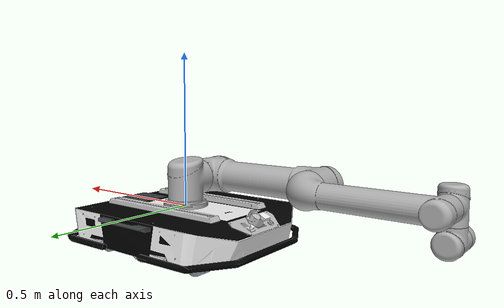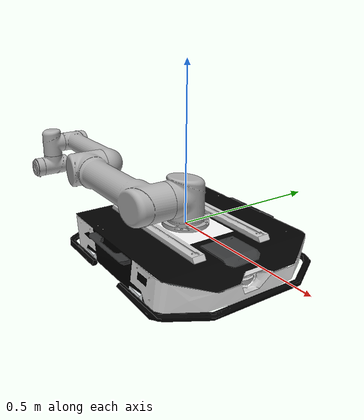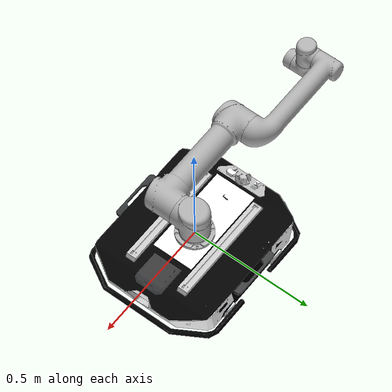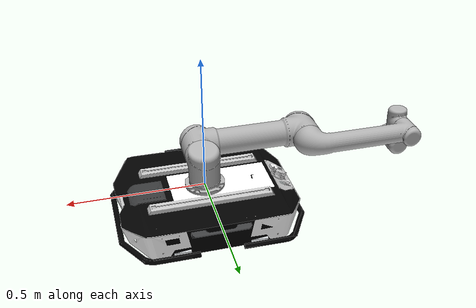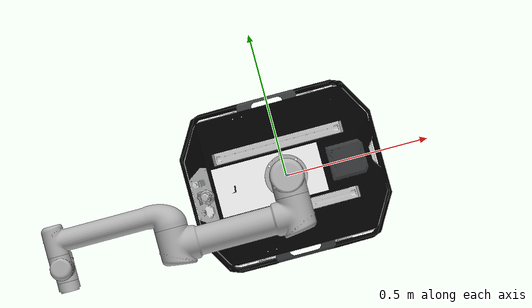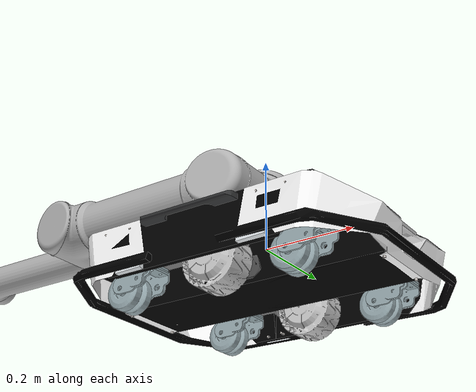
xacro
<?xml version="1.0"?>
<robot name="tracer_ur5_combined">
  <!-- ====================== TRACER URDF CONTENT ====================== -->
  <!-- This content comes directly from your tracer URDF file -->
  <!-- |    This document was autogenerated by xacro from /home/baqer/tracer_ur5_ws/src/tracer_ros/tracer_description/urdf/tracer_v1.xacro | -->
  <!-- |    EDITING THIS FILE BY HAND IS NOT RECOMMENDED                                 | -->
  <link name="base_link">
    <visual>
      <origin rpy="1.57 0 0" xyz="0 0 0" />
      <geometry>
        <mesh filename="package://tracer_description/meshes/tracer_base_link_no_wheel.dae" />
      </geometry>
    </visual>
    <collision>
      <origin rpy="1.57 0 0" xyz="0 0 0" />
      <geometry>
        <mesh filename="package://tracer_description/meshes/tracer_base_link_no_wheel.dae" />
      </geometry>
    </collision>
    <inertial>
      <mass value="0.1" />
      <origin xyz="0 0 0" rpy="0 0 0" />
      <inertia ixx="0.03" iyy="0.03" izz="0.03" ixy="0.0" ixz="0.0" iyz="0.0" />
    </inertial>
  </link>
  <!-- inertial link -->
  <link name="inertial_link">
    <inertial>
      <mass value="132.3898489950015" />
      <origin xyz="0.015 0.0231316650320557 0" />
      <inertia ixx="0.185196122711036" ixy="4.30144213829512E-08" ixz="5.81037523686401E-08" iyy="0.364893736238929" iyz="-0.000386720198091934" izz="0.223868521722778" />
    </inertial>
  </link>
  <joint name="inertial_joint" type="fixed">
    <origin rpy="0 0 0" xyz="0 0 0" />
    <parent link="base_link" />
    <child link="inertial_link" />
  </joint>
  <!-- right wheel -->
  <link name="right_wheel_link">
    <inertial>
      <mass value="6" />
      <origin xyz="0 0 0" rpy="0 0 0" />
      <inertia ixx="0.7171" ixy="0" ixz="0" iyy="0.1361" iyz="0" izz="0.7171" />
    </inertial>
    <visual>
      <origin rpy="0 0 0" xyz="0 0 0" />
      <geometry>
        <mesh filename="package://tracer_description/meshes/tracer_wheel.dae" />
      </geometry>
    </visual>
    <collision>
      <origin rpy="0 0 0" xyz="0 0 0" />
      <geometry>
        <mesh filename="package://tracer_description/meshes/tracer_wheel.dae" />
      </geometry>
    </collision>
  </link>
  <joint name="right_wheel" type="continuous">
    <parent link="base_link" />
    <child link="right_wheel_link" />
    <origin rpy="0 0 0" xyz="0 -0.17 -0.082" />
    <axis rpy="0 0 0" xyz="0 1 0" />
  </joint>
  <!-- left wheel -->
  <link name="left_wheel_link">
    <inertial>
      <mass value="6" />
      <origin xyz="0 0 0" rpy="0 0 0" />
      <inertia ixx="0.7171" ixy="0" ixz="0" iyy="0.1361" iyz="0" izz="0.7171" />
    </inertial>
    <visual>
      <origin rpy="0 0 0" xyz="0 0 0" />
      <geometry>
        <mesh filename="package://tracer_description/meshes/tracer_wheel.dae" />
      </geometry>
    </visual>
    <collision>
      <origin rpy="0 0 0" xyz="0 0 0" />
      <geometry>
        <mesh filename="package://tracer_description/meshes/tracer_wheel.dae" />
      </geometry>
    </collision>
  </link>
  <joint name="left_wheel" type="continuous">
    <parent link="base_link" />
    <child link="left_wheel_link" />
    <origin rpy="3.14 0 0" xyz="0 0.17 -0.082" />
    <axis rpy="0 0 0" xyz="0 1 0" />
  </joint>
  <!-- front left castor -->
  <link name="fl_castor_link">
    <inertial>
      <mass value="1" />
      <origin xyz="0 0 0" />
      <inertia ixx="0.7171" ixy="0" ixz="0" iyy="0.1361" iyz="0" izz="0.7171" />
    </inertial>
    <visual>
      <geometry>
        <mesh filename="package://tracer_description/meshes/castor_joint.dae" />
      </geometry>
    </visual>
  </link>
  <joint name="fl_castor_wheel" type="continuous">
    <origin rpy="-1.57 0 0" xyz="0.18955 0.17 -0.0380886" />
    <parent link="base_link" />
    <child link="fl_castor_link" />
    <axis rpy="0 0 0" xyz="0 1 0" />
  </joint>
  <!-- front right castor -->
  <link name="fr_castor_link">
    <inertial>
      <mass value="1" />
      <origin xyz="0 0 0" />
      <inertia ixx="0.7171" ixy="0" ixz="0" iyy="0.1361" iyz="0" izz="0.7171" />
    </inertial>
    <visual>
      <geometry>
        <mesh filename="package://tracer_description/meshes/castor_joint.dae" />
      </geometry>
    </visual>
  </link>
  <joint name="fr_castor_wheel" type="continuous">
    <origin rpy="-1.57 0 0" xyz="0.18955 -0.17 -0.0380886" />
    <parent link="base_link" />
    <child link="fr_castor_link" />
    <axis rpy="0 0 0" xyz="0 1 0" />
  </joint>
  <!-- rear right castor -->
  <link name="rr_castor_link">
    <inertial>
      <mass value="1" />
      <origin xyz="0 0 0" />
      <inertia ixx="0.7171" ixy="0" ixz="0" iyy="0.1361" iyz="0" izz="0.7171" />
    </inertial>
    <visual>
      <geometry>
        <mesh filename="package://tracer_description/meshes/castor_joint.dae" />
      </geometry>
    </visual>
  </link>
  <joint name="rr_castor_wheel" type="continuous">
    <origin rpy="-1.57 0 0" xyz="-0.18955 -0.17 -0.0380886" />
    <parent link="base_link" />
    <child link="rr_castor_link" />
    <axis rpy="0 0 0" xyz="0 1 0" />
  </joint>
  <!-- rear left castor -->
  <link name="rl_castor_link">
    <inertial>
      <mass value="1" />
      <origin xyz="0 0 0" />
      <inertia ixx="0.7171" ixy="0" ixz="0" iyy="0.1361" iyz="0" izz="0.7171" />
    </inertial>
    <visual>
      <geometry>
        <mesh filename="package://tracer_description/meshes/castor_joint.dae" />
      </geometry>
    </visual>
  </link>
  <joint name="rl_castor_wheel" type="continuous">
    <origin rpy="-1.57 0 0" xyz="-0.18955 0.17 -0.0380886" />
    <parent link="base_link" />
    <child link="rl_castor_link" />
    <axis rpy="0 0 0" xyz="0 1 0" />
  </joint>
  <!-- front left wheel on castor -->
  <link name="fl_wheel_link">
    <inertial>
      <mass value="1" />
      <origin xyz="0 0 0" rpy="0 0 0" />
      <inertia ixx="0.3131" ixy="0" ixz="0" iyy="0.3131" iyz="0" izz="0.1361" />
    </inertial>
    <visual>
      <geometry>
        <mesh filename="package://tracer_description/meshes/castor.dae" />
      </geometry>
    </visual>
    <collision>
      <origin rpy="0 0 0" xyz="0 0 0" />
      <geometry>
        <mesh filename="package://tracer_description/meshes/castor.dae" />
      </geometry>
    </collision>
  </link>
  <joint name="fl_wheel" type="continuous">
    <parent link="fl_castor_link" />
    <child link="fl_wheel_link" />
    <dynamics damping="0.0" friction="0.0" />
    <origin rpy="0 0 0" xyz="-0.0218084 0.067 0" />
    <axis rpy="0 0 0" xyz="0 0 1" />
  </joint>
  <!-- front right wheel on castor -->
  <link name="fr_wheel_link">
    <inertial>
      <mass value="1" />
      <origin xyz="0 0 0" rpy="0 0 0" />
      <inertia ixx="0.3131" ixy="0" ixz="0" iyy="0.3131" iyz="0" izz="0.1361" />
    </inertial>
    <visual>
      <geometry>
        <mesh filename="package://tracer_description/meshes/castor.dae" />
      </geometry>
    </visual>
    <collision>
      <origin rpy="0 0 0" xyz="0 0 0" />
      <geometry>
        <mesh filename="package://tracer_description/meshes/castor.dae" />
      </geometry>
    </collision>
  </link>
  <joint name="fr_wheel" type="continuous">
    <parent link="fr_castor_link" />
    <child link="fr_wheel_link" />
    <dynamics damping="0.0" friction="0.0" />
    <origin rpy="0 0 0" xyz="-0.0218084 0.067 0" />
    <axis rpy="0 0 0" xyz="0 0 1" />
  </joint>
  <!-- rear right wheel on castor -->
  <link name="rr_wheel_link">
    <inertial>
      <mass value="1" />
      <origin xyz="0 0 0" rpy="0 0 0" />
      <inertia ixx="0.3131" ixy="0" ixz="0" iyy="0.3131" iyz="0" izz="0.1361" />
    </inertial>
    <visual>
      <geometry>
        <mesh filename="package://tracer_description/meshes/castor.dae" />
      </geometry>
    </visual>
    <collision>
      <origin rpy="0 0 0" xyz="0 0 0" />
      <geometry>
        <mesh filename="package://tracer_description/meshes/castor.dae" />
      </geometry>
    </collision>
  </link>
  <joint name="rr_wheel" type="continuous">
    <parent link="rr_castor_link" />
    <child link="rr_wheel_link" />
    <dynamics damping="0.0" friction="0.0" />
    <origin rpy="0 0 0" xyz="-0.0218084 0.067 0" />
    <axis rpy="0 0 0" xyz="0 0 1" />
  </joint>
  <!-- rear left wheel on castor -->
  <link name="rl_wheel_link">
    <inertial>
      <mass value="1" />
      <origin xyz="0 0 0" rpy="0 0 0" />
      <inertia ixx="0.3131" ixy="0" ixz="0" iyy="0.3131" iyz="0" izz="0.1361" />
    </inertial>
    <visual>
      <geometry>
        <mesh filename="package://tracer_description/meshes/castor.dae" />
      </geometry>
    </visual>
    <collision>
      <origin rpy="0 0 0" xyz="0 0 0" />
      <geometry>
        <mesh filename="package://tracer_description/meshes/castor.dae" />
      </geometry>
    </collision>
  </link>
  <joint name="rl_wheel" type="continuous">
    <parent link="rl_castor_link" />
    <child link="rl_wheel_link" />
    <dynamics damping="0.0" friction="0.0" />
    <origin rpy="0 0 0" xyz="-0.0218084 0.067 0" />
    <axis rpy="0 0 0" xyz="0 0 1" />
  </joint>
  <!-- Transmissions for tracer wheels and castors -->
  <transmission name="right_wheel_trans" type="SimpleTransmission">
    <type>transmission_interface/SimpleTransmission</type>
    <actuator name="right_wheel_motor">
      <mechanicalReduction>1</mechanicalReduction>
      <hardwareInterface>hardware_interface/EffortJointInterface</hardwareInterface>
    </actuator>
    <joint name="right_wheel">
      <hardwareInterface>hardware_interface/VelocityJointInterface</hardwareInterface>
    </joint>
  </transmission>
  <transmission name="left_wheel_trans" type="SimpleTransmission">
    <type>transmission_interface/SimpleTransmission</type>
    <actuator name="left_wheel_motor">
      <mechanicalReduction>1</mechanicalReduction>
      <hardwareInterface>hardware_interface/EffortJointInterface</hardwareInterface>
    </actuator>
    <joint name="left_wheel">
      <hardwareInterface>hardware_interface/VelocityJointInterface</hardwareInterface>
    </joint>
  </transmission>
  <transmission name="fl_wheel_trans" type="SimpleTransmission">
    <type>transmission_interface/SimpleTransmission</type>
    <actuator name="fl_wheel_motor">
      <mechanicalReduction>1</mechanicalReduction>
      <hardwareInterface>hardware_interface/EffortJointInterface</hardwareInterface>
    </actuator>
    <joint name="fl_wheel">
      <hardwareInterface>hardware_interface/VelocityJointInterface</hardwareInterface>
    </joint>
  </transmission>
  <transmission name="fr_wheel_trans" type="SimpleTransmission">
    <type>transmission_interface/SimpleTransmission</type>
    <actuator name="fr_wheel_motor">
      <mechanicalReduction>1</mechanicalReduction>
      <hardwareInterface>hardware_interface/EffortJointInterface</hardwareInterface>
    </actuator>
    <joint name="fr_wheel">
      <hardwareInterface>hardware_interface/VelocityJointInterface</hardwareInterface>
    </joint>
  </transmission>
  <transmission name="rr_wheel_trans" type="SimpleTransmission">
    <type>transmission_interface/SimpleTransmission</type>
    <actuator name="rr_wheel_motor">
      <mechanicalReduction>1</mechanicalReduction>
      <hardwareInterface>hardware_interface/EffortJointInterface</hardwareInterface>
    </actuator>
    <joint name="rr_wheel">
      <hardwareInterface>hardware_interface/VelocityJointInterface</hardwareInterface>
    </joint>
  </transmission>
  <transmission name="rl_wheel_trans" type="SimpleTransmission">
    <type>transmission_interface/SimpleTransmission</type>
    <actuator name="rl_wheel_motor">
      <mechanicalReduction>1</mechanicalReduction>
      <hardwareInterface>hardware_interface/EffortJointInterface</hardwareInterface>
    </actuator>
    <joint name="rl_wheel">
      <hardwareInterface>hardware_interface/VelocityJointInterface</hardwareInterface>
    </joint>
  </transmission>
  <transmission name="fl_castor_wheel_trans" type="SimpleTransmission">
    <type>transmission_interface/SimpleTransmission</type>
    <actuator name="fl_castor_wheel_motor">
      <mechanicalReduction>1</mechanicalReduction>
      <hardwareInterface>hardware_interface/EffortJointInterface</hardwareInterface>
    </actuator>
    <joint name="fl_castor_wheel">
      <hardwareInterface>hardware_interface/VelocityJointInterface</hardwareInterface>
    </joint>
  </transmission>
  <transmission name="fr_castor_wheel_trans" type="SimpleTransmission">
    <type>transmission_interface/SimpleTransmission</type>
    <actuator name="fr_castor_wheel_motor">
      <mechanicalReduction>1</mechanicalReduction>
      <hardwareInterface>hardware_interface/EffortJointInterface</hardwareInterface>
    </actuator>
    <joint name="fr_castor_wheel">
      <hardwareInterface>hardware_interface/VelocityJointInterface</hardwareInterface>
    </joint>
  </transmission>
  <transmission name="rr_castor_wheel_trans" type="SimpleTransmission">
    <type>transmission_interface/SimpleTransmission</type>
    <actuator name="rr_castor_wheel_motor">
      <mechanicalReduction>1</mechanicalReduction>
      <hardwareInterface>hardware_interface/EffortJointInterface</hardwareInterface>
    </actuator>
    <joint name="rr_castor_wheel">
      <hardwareInterface>hardware_interface/VelocityJointInterface</hardwareInterface>
    </joint>
  </transmission>
  <transmission name="rl_castor_wheel_trans" type="SimpleTransmission">
    <type>transmission_interface/SimpleTransmission</type>
    <actuator name="rl_castor_wheel_motor">
      <mechanicalReduction>1</mechanicalReduction>
      <hardwareInterface>hardware_interface/EffortJointInterface</hardwareInterface>
    </actuator>
    <joint name="rl_castor_wheel">
      <hardwareInterface>hardware_interface/VelocityJointInterface</hardwareInterface>
    </joint>
  </transmission>
  <gazebo>
    <plugin filename="libgazebo_ros_control.so" name="gazebo_ros_control">
      <robotNamespace>/</robotNamespace>
    </plugin>
  </gazebo>
  <gazebo>
    <mu1 value="1.0" />
    <mu2 value="0.9" />
    <kp value="10000000.0" />
    <kd value="1.0" />
    <fdir1 value="1 0 0" />
    <minDepth value="0.001" />
    <maxContacts value="64" />
  </gazebo>
  <!-- ====================== END TRACER URDF CONTENT ====================== -->

  <!-- ====================== UR5 URDF CONTENT (RENAMED) ====================== -->
  <transmission name="ur5_shoulder_pan_trans">
    <type>transmission_interface/SimpleTransmission</type>
    <joint name="ur5_shoulder_pan_joint">
      <hardwareInterface>hardware_interface/EffortJointInterface</hardwareInterface>
    </joint>
    <actuator name="ur5_shoulder_pan_motor">
      <mechanicalReduction>1</mechanicalReduction>
      <hardwareInterface>hardware_interface/EffortJointInterface</hardwareInterface>
    </actuator>
  </transmission>
  <transmission name="ur5_shoulder_lift_trans">
    <type>transmission_interface/SimpleTransmission</type>
    <joint name="ur5_shoulder_lift_joint">
      <hardwareInterface>hardware_interface/EffortJointInterface</hardwareInterface>
    </joint>
    <actuator name="ur5_shoulder_lift_motor">
      <mechanicalReduction>1</mechanicalReduction>
      <hardwareInterface>hardware_interface/EffortJointInterface</hardwareInterface>
    </actuator>
  </transmission>
  <transmission name="ur5_elbow_trans">
    <type>transmission_interface/SimpleTransmission</type>
    <joint name="ur5_elbow_joint">
      <hardwareInterface>hardware_interface/EffortJointInterface</hardwareInterface>
    </joint>
    <actuator name="ur5_elbow_motor">
      <mechanicalReduction>1</mechanicalReduction>
      <hardwareInterface>hardware_interface/EffortJointInterface</hardwareInterface>
    </actuator>
  </transmission>
  <transmission name="ur5_wrist_1_trans">
    <type>transmission_interface/SimpleTransmission</type>
    <joint name="ur5_wrist_1_joint">
      <hardwareInterface>hardware_interface/EffortJointInterface</hardwareInterface>
    </joint>
    <actuator name="ur5_wrist_1_motor">
      <mechanicalReduction>1</mechanicalReduction>
      <hardwareInterface>hardware_interface/EffortJointInterface</hardwareInterface>
    </actuator>
  </transmission>
  <transmission name="ur5_wrist_2_trans">
    <type>transmission_interface/SimpleTransmission</type>
    <joint name="ur5_wrist_2_joint">
      <hardwareInterface>hardware_interface/EffortJointInterface</hardwareInterface>
    </joint>
    <actuator name="ur5_wrist_2_motor">
      <mechanicalReduction>1</mechanicalReduction>
      <hardwareInterface>hardware_interface/EffortJointInterface</hardwareInterface>
    </actuator>
  </transmission>
  <transmission name="ur5_wrist_3_trans">
    <type>transmission_interface/SimpleTransmission</type>
    <joint name="ur5_wrist_3_joint">
      <hardwareInterface>hardware_interface/EffortJointInterface</hardwareInterface>
    </joint>
    <actuator name="ur5_wrist_3_motor">
      <mechanicalReduction>1</mechanicalReduction>
      <hardwareInterface>hardware_interface/EffortJointInterface</hardwareInterface>
    </actuator>
  </transmission>

  <link name="ur5_base_link"/>
  <link name="ur5_base_link_inertia">
    <visual>
      <origin rpy="0 0 3.141592653589793" xyz="0 0 0"/>
      <geometry>
        <mesh filename="package://ur_description/meshes/ur5/visual/base.dae"/>
      </geometry>
      <material name="LightGrey">
        <color rgba="0.7 0.7 0.7 1.0"/>
      </material>
    </visual>
    <collision>
      <origin rpy="0 0 3.141592653589793" xyz="0 0 0"/>
      <geometry>
        <mesh filename="package://ur_description/meshes/ur5/collision/base.stl"/>
      </geometry>
    </collision>
    <inertial>
      <mass value="4.0"/>
      <origin rpy="0 0 0" xyz="0 0 0"/>
      <inertia ixx="0.00443333156" ixy="0.0" ixz="0.0" iyy="0.00443333156" iyz="0.0" izz="0.0072"/>
    </inertial>
  </link>
  <joint name="ur5_base_to_inertia_joint" type="fixed">
    <origin rpy="0 0 3.141592653589793" xyz="0 0 0"/>
    <parent link="ur5_base_link"/>
    <child link="ur5_base_link_inertia"/>
  </joint>

  <link name="ur5_shoulder_link">
    <visual>
      <origin rpy="0 0 3.141592653589793" xyz="0 0 0"/>
      <geometry>
        <mesh filename="package://ur_description/meshes/ur5/visual/shoulder.dae"/>
      </geometry>
      <material name="LightGrey">
        <color rgba="0.7 0.7 0.7 1.0"/>
      </material>
    </visual>
    <collision>
      <origin rpy="0 0 3.141592653589793" xyz="0 0 0"/>
      <geometry>
        <mesh filename="package://ur_description/meshes/ur5/collision/shoulder.stl"/>
      </geometry>
    </collision>
    <inertial>
      <mass value="3.7"/>
      <origin rpy="0 0 0" xyz="0 0 0"/>
      <inertia ixx="0.014972352344389999" ixy="0.0" ixz="0.0" iyy="0.014972352344389999" iyz="0.0" izz="0.01040625"/>
    </inertial>
  </link>

  <link name="ur5_upper_arm_link">
    <visual>
      <origin rpy="1.5707963267948966 0 -1.5707963267948966" xyz="0 0 0.13585"/>
      <geometry>
        <mesh filename="package://ur_description/meshes/ur5/visual/upperarm.dae"/>
      </geometry>
      <material name="LightGrey">
        <color rgba="0.7 0.7 0.7 1.0"/>
      </material>
    </visual>
    <collision>
      <origin rpy="1.5707963267948966 0 -1.5707963267948966" xyz="0 0 0.13585"/>
      <geometry>
        <mesh filename="package://ur_description/meshes/ur5/collision/upperarm.stl"/>
      </geometry>
    </collision>
    <inertial>
      <mass value="8.393"/>
      <origin rpy="0 1.5707963267948966 0" xyz="-0.2125 0 0.136"/>
      <inertia ixx="0.1338857818623325" ixy="0.0" ixz="0.0" iyy="0.1338857818623325" iyz="0.0" izz="0.0151074"/>
    </inertial>
  </link>

  <link name="ur5_forearm_link">
    <visual>
      <origin rpy="1.5707963267948966 0 -1.5707963267948966" xyz="0 0 0.0165"/>
      <geometry>
        <mesh filename="package://ur_description/meshes/ur5/visual/forearm.dae"/>
      </geometry>
      <material name="LightGrey">
        <color rgba="0.7 0.7 0.7 1.0"/>
      </material>
    </visual>
    <collision>
      <origin rpy="1.5707963267948966 0 -1.5707963267948966" xyz="0 0 0.0165"/>
      <geometry>
        <mesh filename="package://ur_description/meshes/ur5/collision/forearm.stl"/>
      </geometry>
    </collision>
    <inertial>
      <mass value="2.275"/>
      <origin rpy="0 1.5707963267948966 0" xyz="-0.196125 0 0.0165"/>
      <inertia ixx="0.03121679102890359" ixy="0.0" ixz="0.0" iyy="0.03121679102890359" iyz="0.0" izz="0.004095"/>
    </inertial>
  </link>

  <link name="ur5_wrist_1_link">
    <visual>
      <origin rpy="1.5707963267948966 0 0" xyz="0 0 -0.093"/>
      <geometry>
        <mesh filename="package://ur_description/meshes/ur5/visual/wrist1.dae"/>
      </geometry>
      <material name="LightGrey">
        <color rgba="0.7 0.7 0.7 1.0"/>
      </material>
    </visual>
    <collision>
      <origin rpy="1.5707963267948966 0 0" xyz="0 0 -0.093"/>
      <geometry>
        <mesh filename="package://ur_description/meshes/ur5/collision/wrist1.stl"/>
      </geometry>
    </collision>
    <inertial>
      <mass value="1.219"/>
      <origin rpy="0 0 0" xyz="0 0 0"/>
      <inertia ixx="0.0020138887777775" ixy="0.0" ixz="0.0" iyy="0.0020138887777775" iyz="0.0" izz="0.0021942"/>
    </inertial>
  </link>

  <link name="ur5_wrist_2_link">
    <visual>
      <origin rpy="0 0 0" xyz="0 0 -0.095"/>
      <geometry>
        <mesh filename="package://ur_description/meshes/ur5/visual/wrist2.dae"/>
      </geometry>
      <material name="LightGrey">
        <color rgba="0.7 0.7 0.7 1.0"/>
      </material>
    </visual>
    <collision>
      <origin rpy="0 0 0" xyz="0 0 -0.095"/>
      <geometry>
        <mesh filename="package://ur_description/meshes/ur5/collision/wrist2.stl"/>
      </geometry>
    </collision>
    <inertial>
      <mass value="1.219"/>
      <origin rpy="0 0 0" xyz="0 0 0"/>
      <inertia ixx="0.0018310388509175" ixy="0.0" ixz="0.0" iyy="0.0018310388509175" iyz="0.0" izz="0.0021942"/>
    </inertial>
  </link>

  <link name="ur5_wrist_3_link">
    <visual>
      <origin rpy="1.5707963267948966 0 0" xyz="0 0 -0.0818"/>
      <geometry>
        <mesh filename="package://ur_description/meshes/ur5/visual/wrist3.dae"/>
      </geometry>
      <material name="LightGrey">
        <color rgba="0.7 0.7 0.7 1.0"/>
      </material>
    </visual>
    <collision>
      <origin rpy="1.5707963267948966 0 0" xyz="0 0 -0.0818"/>
      <geometry>
        <mesh filename="package://ur_description/meshes/ur5/collision/wrist3.stl"/>
      </geometry>
    </collision>
    <inertial>
      <mass value="0.1879"/>
      <origin rpy="0 0 0" xyz="0.0 0.0 -0.01525"/>
      <inertia ixx="8.062472608343e-05" ixy="0.0" ixz="0.0" iyy="8.062472608343e-05" iyz="0.0" izz="0.0001321171875"/>
    </inertial>
  </link>

  <!-- UR5 joints -->
  <joint name="ur5_shoulder_pan_joint" type="revolute">
    <parent link="ur5_base_link_inertia"/>
    <child link="ur5_shoulder_link"/>
    <origin rpy="0 0 0" xyz="0 0 0.089159"/>
    <axis xyz="0 0 1"/>
    <limit effort="150.0" lower="-6.283185307179586" upper="6.283185307179586" velocity="3.141592653589793"/>
    <dynamics damping="0" friction="0"/>
  </joint>
  <joint name="ur5_shoulder_lift_joint" type="revolute">
    <parent link="ur5_shoulder_link"/>
    <child link="ur5_upper_arm_link"/>
    <origin rpy="1.570796327 0 0" xyz="0 0 0"/>
    <axis xyz="0 0 1"/>
    <limit effort="150.0" lower="-6.283185307179586" upper="6.283185307179586" velocity="3.141592653589793"/>
    <dynamics damping="0" friction="0"/>
  </joint>
  <joint name="ur5_elbow_joint" type="revolute">
    <parent link="ur5_upper_arm_link"/>
    <child link="ur5_forearm_link"/>
    <origin rpy="0 0 0" xyz="-0.425 0 0"/>
    <axis xyz="0 0 1"/>
    <limit effort="150.0" lower="-3.141592653589793" upper="3.141592653589793" velocity="3.141592653589793"/>
    <dynamics damping="0" friction="0"/>
  </joint>
  <joint name="ur5_wrist_1_joint" type="revolute">
    <parent link="ur5_forearm_link"/>
    <child link="ur5_wrist_1_link"/>
    <origin rpy="0 0 0" xyz="-0.39225 0 0.10915"/>
    <axis xyz="0 0 1"/>
    <limit effort="28.0" lower="-6.283185307179586" upper="6.283185307179586" velocity="3.141592653589793"/>
    <dynamics damping="0" friction="0"/>
  </joint>
  <joint name="ur5_wrist_2_joint" type="revolute">
    <parent link="ur5_wrist_1_link"/>
    <child link="ur5_wrist_2_link"/>
    <origin rpy="1.570796327 0 0" xyz="0 -0.09465 0"/>
    <axis xyz="0 0 1"/>
    <limit effort="28.0" lower="-6.283185307179586" upper="6.283185307179586" velocity="3.141592653589793"/>
    <dynamics damping="0" friction="0"/>
  </joint>
  <joint name="ur5_wrist_3_joint" type="revolute">
    <parent link="ur5_wrist_2_link"/>
    <child link="ur5_wrist_3_link"/>
    <origin rpy="1.570796326589793 3.141592653589793 3.141592653589793" xyz="0 0.0823 -1.688001216681175e-11" />
    <axis xyz="0 0 1"/>
    <limit effort="28.0" lower="-6.283185307179586" upper="6.283185307179586" velocity="3.141592653589793"/>
    <dynamics damping="0" friction="0"/>
  </joint>
  <link name="ur5_base"/>
  <joint name="ur5_base_to_fixed_joint" type="fixed">
    <origin rpy="0 0 3.141592653589793" xyz="0 0 0"/>
    <parent link="ur5_base_link"/>
    <child link="ur5_base"/>
  </joint>
  <link name="ur5_flange"/>
  <joint name="ur5_wrist3_to_flange_joint" type="fixed">
    <parent link="ur5_wrist_3_link"/>
    <child link="ur5_flange"/>
    <origin rpy="0 -1.5707963267948966 -1.5707963267948966" xyz="0 0 0"/>
  </joint>
  <link name="ur5_tool0"/>
  <joint name="ur5_flange_to_tool0_joint" type="fixed">
    <origin rpy="1.5707963267948966 0 1.5707963267948966" xyz="0 0 0"/>
    <parent link="ur5_flange"/>
    <child link="ur5_tool0"/>
  </joint>

  <!-- ====================== ATTACH UR5 TO TRACER ====================== -->
  <!-- This fixed joint mounts the UR5 (its base is "ur5_base_link") to the tracer's base_link -->
  <joint name="tracer_to_ur5" type="fixed">
    <!-- Adjust the xyz and rpy as needed to properly mount the arm -->
    <origin xyz="0.0 0.0 0.0" rpy="0 0 3.14159"/>
    <parent link="base_link"/>
    <child link="ur5_base_link"/>
  </joint>

</robot>
